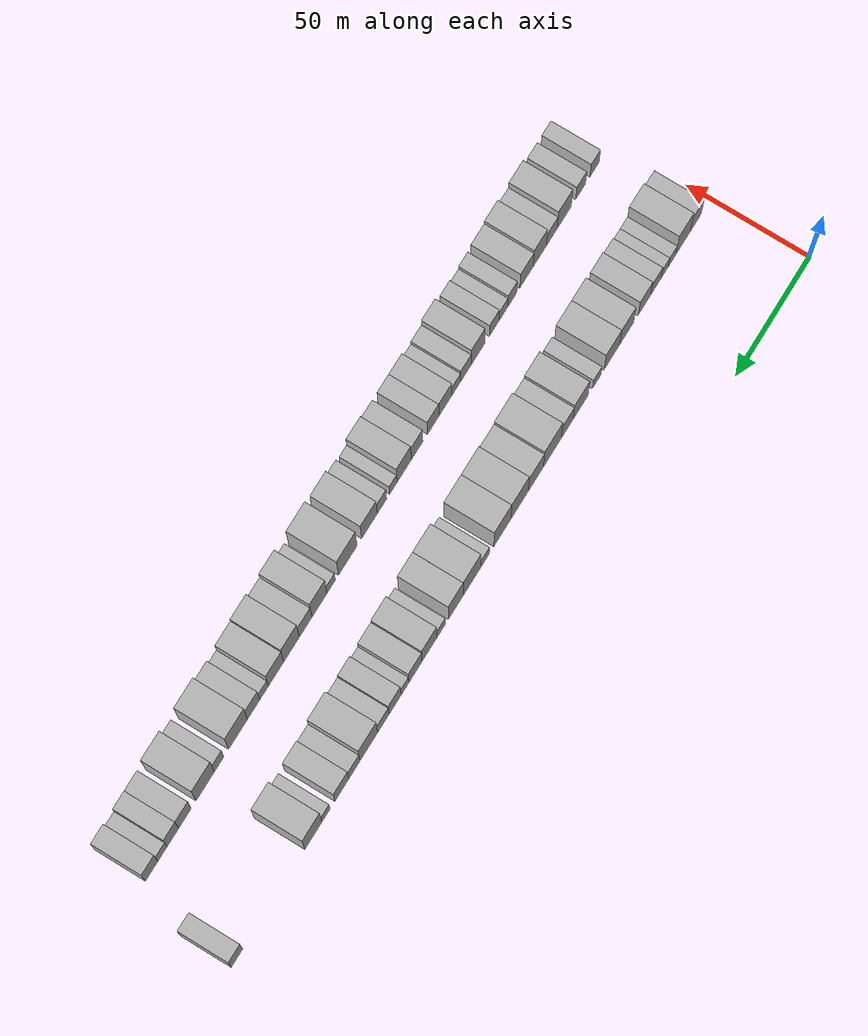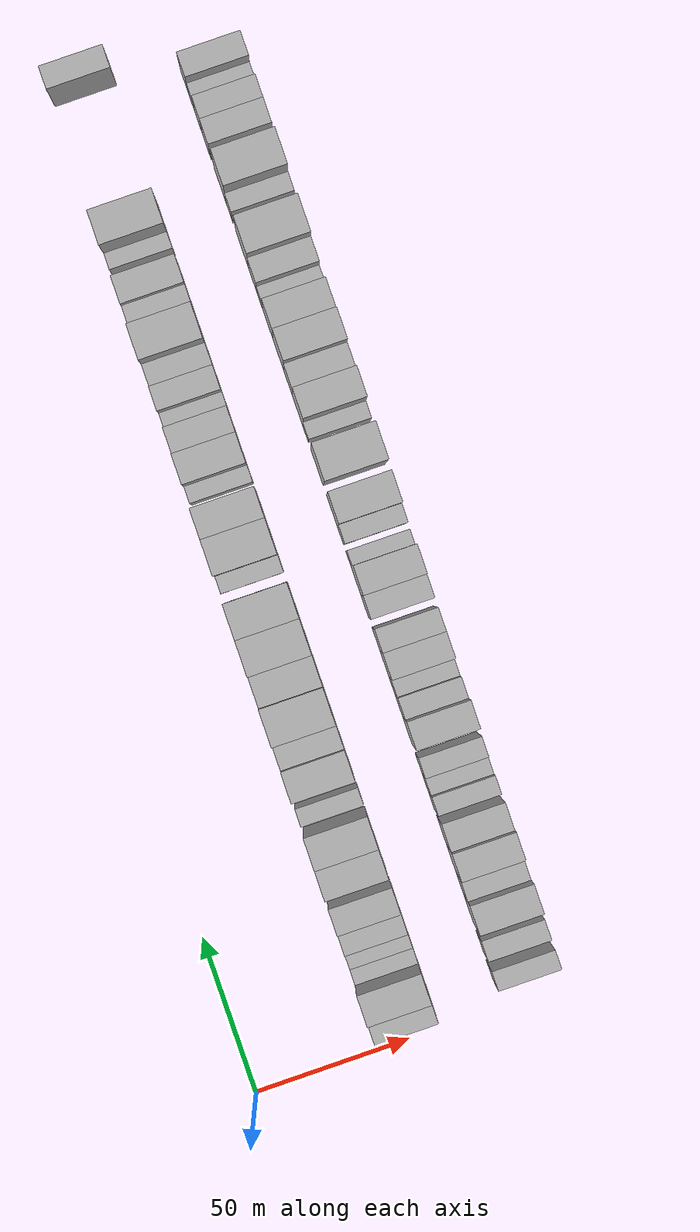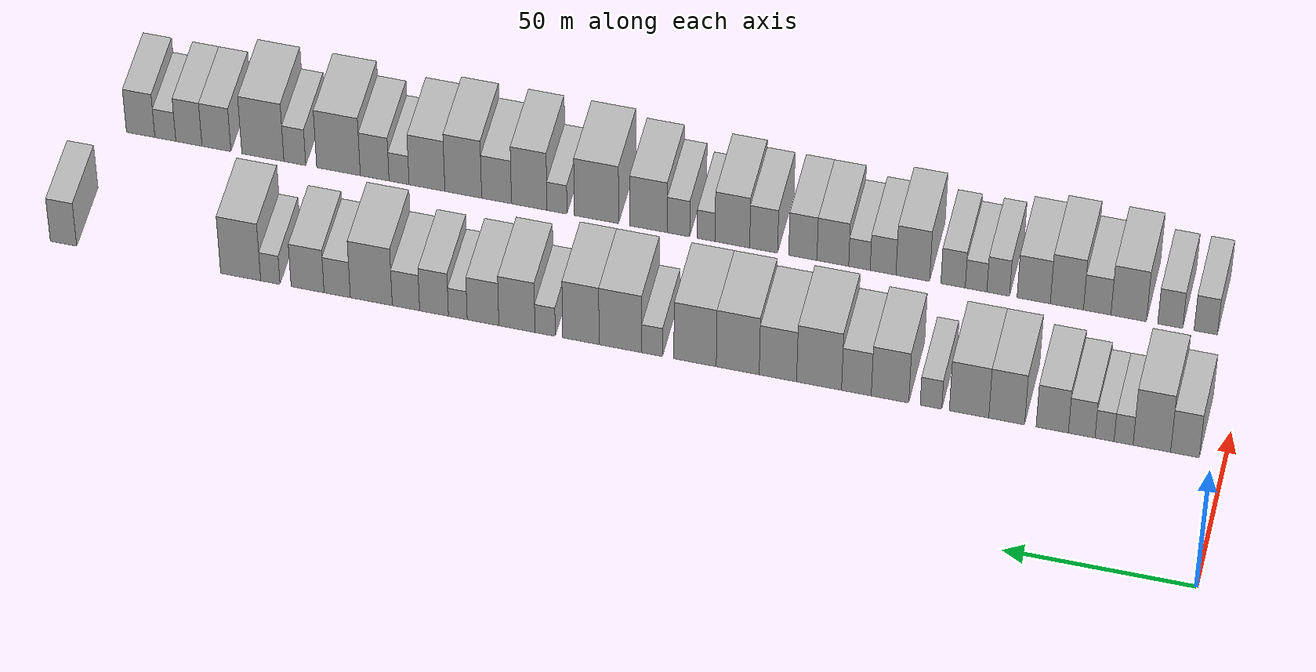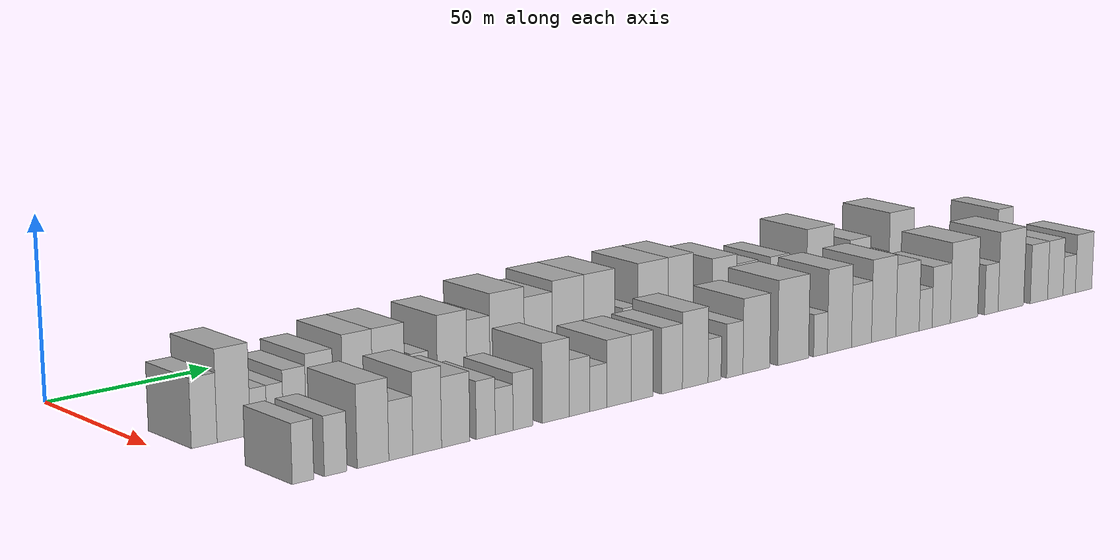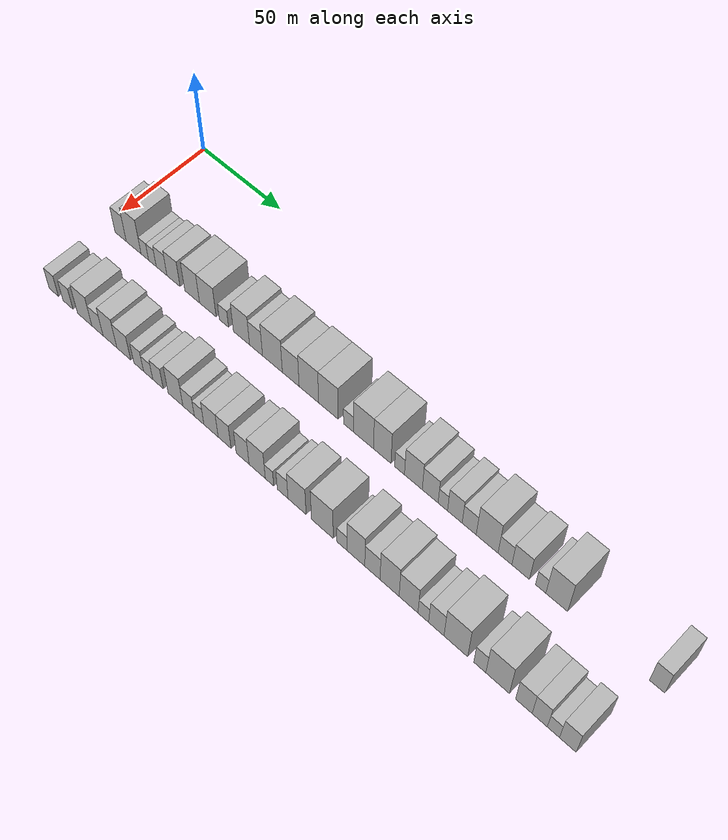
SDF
<sdf version="1.6">
 <world name="default">
  <model name="building_37">
   <static>1</static>
   <pose>50.0000 10.3799 0 0.000000 0.000000 0.000000</pose>
   <link name="link">
    <pose>0 0 9.00 0 0 0</pose>
    <collision name="collision"><geometry><box><size>20.0000 7.4938 18.0000</size></box></geometry></collision>
    <visual name="visual">
     <cast_shadows>0</cast_shadows>
     <geometry><box><size>20.0000 7.4938 18.0000</size></box></geometry>
     <material>
      <script>
       <uri>model://HANNAS_wall/materials/scripts</uri>
       <uri>model://HANNAS_wall/materials/textures</uri>
       <name>vrc/HANNAS_wall</name>
      </script>
     </material>
    </visual>
   </link>
  </model>
  <model name="building_38">
   <static>1</static>
   <pose>50.0000 19.0260 0 0.000000 0.000000 0.000000</pose>
   <link name="link">
    <pose>0 0 12.00 0 0 0</pose>
    <collision name="collision"><geometry><box><size>20.0000 9.7985 24.0000</size></box></geometry></collision>
    <visual name="visual">
     <cast_shadows>0</cast_shadows>
     <geometry><box><size>20.0000 9.7985 24.0000</size></box></geometry>
     <material>
      <script>
       <uri>model://HANNAS_wall/materials/scripts</uri>
       <uri>model://HANNAS_wall/materials/textures</uri>
       <name>vrc/HANNAS_wall</name>
      </script>
     </material>
    </visual>
   </link>
  </model>
  <model name="building_39">
   <static>1</static>
   <pose>50.0000 26.4072 0 0.000000 0.000000 0.000000</pose>
   <link name="link">
    <pose>0 0 6.00 0 0 0</pose>
    <collision name="collision"><geometry><box><size>20.0000 4.9640 12.0000</size></box></geometry></collision>
    <visual name="visual">
     <cast_shadows>0</cast_shadows>
     <geometry><box><size>20.0000 4.9640 12.0000</size></box></geometry>
     <material>
      <script>
       <uri>model://HANNAS_wall/materials/scripts</uri>
       <uri>model://HANNAS_wall/materials/textures</uri>
       <name>vrc/HANNAS_wall</name>
      </script>
     </material>
    </visual>
   </link>
  </model>
  <model name="building_40">
   <static>1</static>
   <pose>50.0000 31.3731 0 0.000000 0.000000 0.000000</pose>
   <link name="link">
    <pose>0 0 6.00 0 0 0</pose>
    <collision name="collision"><geometry><box><size>20.0000 4.9677 12.0000</size></box></geometry></collision>
    <visual name="visual">
     <cast_shadows>0</cast_shadows>
     <geometry><box><size>20.0000 4.9677 12.0000</size></box></geometry>
     <material>
      <script>
       <uri>model://HANNAS_wall/materials/scripts</uri>
       <uri>model://HANNAS_wall/materials/textures</uri>
       <name>vrc/HANNAS_wall</name>
      </script>
     </material>
    </visual>
   </link>
  </model>
  <model name="building_41">
   <static>1</static>
   <pose>50.0000 37.3386 0 0.000000 0.000000 0.000000</pose>
   <link name="link">
    <pose>0 0 7.50 0 0 0</pose>
    <collision name="collision"><geometry><box><size>20.0000 6.9632 15.0000</size></box></geometry></collision>
    <visual name="visual">
     <cast_shadows>0</cast_shadows>
     <geometry><box><size>20.0000 6.9632 15.0000</size></box></geometry>
     <material>
      <script>
       <uri>model://HANNAS_wall/materials/scripts</uri>
       <uri>model://HANNAS_wall/materials/textures</uri>
       <name>vrc/HANNAS_wall</name>
      </script>
     </material>
    </visual>
   </link>
  </model>
  <model name="building_42">
   <static>1</static>
   <pose>50.0000 45.0478 0 0.000000 0.000000 0.000000</pose>
   <link name="link">
    <pose>0 0 9.00 0 0 0</pose>
    <collision name="collision"><geometry><box><size>20.0000 8.4552 18.0000</size></box></geometry></collision>
    <visual name="visual">
     <cast_shadows>0</cast_shadows>
     <geometry><box><size>20.0000 8.4552 18.0000</size></box></geometry>
     <material>
      <script>
       <uri>model://HANNAS_wall/materials/scripts</uri>
       <uri>model://HANNAS_wall/materials/textures</uri>
       <name>vrc/HANNAS_wall</name>
      </script>
     </material>
    </visual>
   </link>
  </model>
  <model name="building_43">
   <static>1</static>
   <pose>50.0000 56.9796 0 0.000000 0.000000 0.000000</pose>
   <link name="link">
    <pose>0 0 10.50 0 0 0</pose>
    <collision name="collision"><geometry><box><size>20.0000 9.4084 21.0000</size></box></geometry></collision>
    <visual name="visual">
     <cast_shadows>0</cast_shadows>
     <geometry><box><size>20.0000 9.4084 21.0000</size></box></geometry>
     <material>
      <script>
       <uri>model://HANNAS_wall/materials/scripts</uri>
       <uri>model://HANNAS_wall/materials/textures</uri>
       <name>vrc/HANNAS_wall</name>
      </script>
     </material>
    </visual>
   </link>
  </model>
  <model name="building_44">
   <static>1</static>
   <pose>50.0000 66.8677 0 0.000000 0.000000 0.000000</pose>
   <link name="link">
    <pose>0 0 10.50 0 0 0</pose>
    <collision name="collision"><geometry><box><size>20.0000 10.3678 21.0000</size></box></geometry></collision>
    <visual name="visual">
     <cast_shadows>0</cast_shadows>
     <geometry><box><size>20.0000 10.3678 21.0000</size></box></geometry>
     <material>
      <script>
       <uri>model://HANNAS_wall/materials/scripts</uri>
       <uri>model://HANNAS_wall/materials/textures</uri>
       <name>vrc/HANNAS_wall</name>
      </script>
     </material>
    </visual>
   </link>
  </model>
  <model name="building_45">
   <static>1</static>
   <pose>50.0000 76.8989 0 0.000000 0.000000 0.000000</pose>
   <link name="link">
    <pose>0 0 6.00 0 0 0</pose>
    <collision name="collision"><geometry><box><size>20.0000 5.6946 12.0000</size></box></geometry></collision>
    <visual name="visual">
     <cast_shadows>0</cast_shadows>
     <geometry><box><size>20.0000 5.6946 12.0000</size></box></geometry>
     <material>
      <script>
       <uri>model://HANNAS_wall/materials/scripts</uri>
       <uri>model://HANNAS_wall/materials/textures</uri>
       <name>vrc/HANNAS_wall</name>
      </script>
     </material>
    </visual>
   </link>
  </model>
  <model name="building_46">
   <static>1</static>
   <pose>50.0000 87.6956 0 0.000000 0.000000 0.000000</pose>
   <link name="link">
    <pose>0 0 10.50 0 0 0</pose>
    <collision name="collision"><geometry><box><size>20.0000 9.8988 21.0000</size></box></geometry></collision>
    <visual name="visual">
     <cast_shadows>0</cast_shadows>
     <geometry><box><size>20.0000 9.8988 21.0000</size></box></geometry>
     <material>
      <script>
       <uri>model://HANNAS_wall/materials/scripts</uri>
       <uri>model://HANNAS_wall/materials/textures</uri>
       <name>vrc/HANNAS_wall</name>
      </script>
     </material>
    </visual>
   </link>
  </model>
  <model name="building_47">
   <static>1</static>
   <pose>50.0000 96.5750 0 0.000000 0.000000 0.000000</pose>
   <link name="link">
    <pose>0 0 9.00 0 0 0</pose>
    <collision name="collision"><geometry><box><size>20.0000 7.8600 18.0000</size></box></geometry></collision>
    <visual name="visual">
     <cast_shadows>0</cast_shadows>
     <geometry><box><size>20.0000 7.8600 18.0000</size></box></geometry>
     <material>
      <script>
       <uri>model://HANNAS_wall/materials/scripts</uri>
       <uri>model://HANNAS_wall/materials/textures</uri>
       <name>vrc/HANNAS_wall</name>
      </script>
     </material>
    </visual>
   </link>
  </model>
  <model name="building_48">
   <static>1</static>
   <pose>50.0000 106.4544 0 0.000000 0.000000 0.000000</pose>
   <link name="link">
    <pose>0 0 12.00 0 0 0</pose>
    <collision name="collision"><geometry><box><size>20.0000 11.8987 24.0000</size></box></geometry></collision>
    <visual name="visual">
     <cast_shadows>0</cast_shadows>
     <geometry><box><size>20.0000 11.8987 24.0000</size></box></geometry>
     <material>
      <script>
       <uri>model://HANNAS_wall/materials/scripts</uri>
       <uri>model://HANNAS_wall/materials/textures</uri>
       <name>vrc/HANNAS_wall</name>
      </script>
     </material>
    </visual>
   </link>
  </model>
  <model name="building_49">
   <static>1</static>
   <pose>50.0000 117.3577 0 0.000000 0.000000 0.000000</pose>
   <link name="link">
    <pose>0 0 10.50 0 0 0</pose>
    <collision name="collision"><geometry><box><size>20.0000 9.9080 21.0000</size></box></geometry></collision>
    <visual name="visual">
     <cast_shadows>0</cast_shadows>
     <geometry><box><size>20.0000 9.9080 21.0000</size></box></geometry>
     <material>
      <script>
       <uri>model://HANNAS_wall/materials/scripts</uri>
       <uri>model://HANNAS_wall/materials/textures</uri>
       <name>vrc/HANNAS_wall</name>
      </script>
     </material>
    </visual>
   </link>
  </model>
  <model name="building_50">
   <static>1</static>
   <pose>50.0000 128.0077 0 0.000000 0.000000 0.000000</pose>
   <link name="link">
    <pose>0 0 12.00 0 0 0</pose>
    <collision name="collision"><geometry><box><size>20.0000 11.3920 24.0000</size></box></geometry></collision>
    <visual name="visual">
     <cast_shadows>0</cast_shadows>
     <geometry><box><size>20.0000 11.3920 24.0000</size></box></geometry>
     <material>
      <script>
       <uri>model://HANNAS_wall/materials/scripts</uri>
       <uri>model://HANNAS_wall/materials/textures</uri>
       <name>vrc/HANNAS_wall</name>
      </script>
     </material>
    </visual>
   </link>
  </model>
  <model name="building_51">
   <static>1</static>
   <pose>50.0000 139.3431 0 0.000000 0.000000 0.000000</pose>
   <link name="link">
    <pose>0 0 12.00 0 0 0</pose>
    <collision name="collision"><geometry><box><size>20.0000 11.2789 24.0000</size></box></geometry></collision>
    <visual name="visual">
     <cast_shadows>0</cast_shadows>
     <geometry><box><size>20.0000 11.2789 24.0000</size></box></geometry>
     <material>
      <script>
       <uri>model://HANNAS_wall/materials/scripts</uri>
       <uri>model://HANNAS_wall/materials/textures</uri>
       <name>vrc/HANNAS_wall</name>
      </script>
     </material>
    </visual>
   </link>
  </model>
  <model name="building_52">
   <static>1</static>
   <pose>50.0000 150.7632 0 0.000000 0.000000 0.000000</pose>
   <link name="link">
    <pose>0 0 6.00 0 0 0</pose>
    <collision name="collision"><geometry><box><size>20.0000 5.5613 12.0000</size></box></geometry></collision>
    <visual name="visual">
     <cast_shadows>0</cast_shadows>
     <geometry><box><size>20.0000 5.5613 12.0000</size></box></geometry>
     <material>
      <script>
       <uri>model://HANNAS_wall/materials/scripts</uri>
       <uri>model://HANNAS_wall/materials/textures</uri>
       <name>vrc/HANNAS_wall</name>
      </script>
     </material>
    </visual>
   </link>
  </model>
  <model name="building_53">
   <static>1</static>
   <pose>50.0000 159.2375 0 0.000000 0.000000 0.000000</pose>
   <link name="link">
    <pose>0 0 12.00 0 0 0</pose>
    <collision name="collision"><geometry><box><size>20.0000 11.3873 24.0000</size></box></geometry></collision>
    <visual name="visual">
     <cast_shadows>0</cast_shadows>
     <geometry><box><size>20.0000 11.3873 24.0000</size></box></geometry>
     <material>
      <script>
       <uri>model://HANNAS_wall/materials/scripts</uri>
       <uri>model://HANNAS_wall/materials/textures</uri>
       <name>vrc/HANNAS_wall</name>
      </script>
     </material>
    </visual>
   </link>
  </model>
  <model name="building_54">
   <static>1</static>
   <pose>50.0000 169.7897 0 0.000000 0.000000 0.000000</pose>
   <link name="link">
    <pose>0 0 12.00 0 0 0</pose>
    <collision name="collision"><geometry><box><size>20.0000 9.7170 24.0000</size></box></geometry></collision>
    <visual name="visual">
     <cast_shadows>0</cast_shadows>
     <geometry><box><size>20.0000 9.7170 24.0000</size></box></geometry>
     <material>
      <script>
       <uri>model://HANNAS_wall/materials/scripts</uri>
       <uri>model://HANNAS_wall/materials/textures</uri>
       <name>vrc/HANNAS_wall</name>
      </script>
     </material>
    </visual>
   </link>
  </model>
  <model name="building_55">
   <static>1</static>
   <pose>50.0000 179.3563 0 0.000000 0.000000 0.000000</pose>
   <link name="link">
    <pose>0 0 6.00 0 0 0</pose>
    <collision name="collision"><geometry><box><size>20.0000 5.4163 12.0000</size></box></geometry></collision>
    <visual name="visual">
     <cast_shadows>0</cast_shadows>
     <geometry><box><size>20.0000 5.4163 12.0000</size></box></geometry>
     <material>
      <script>
       <uri>model://HANNAS_wall/materials/scripts</uri>
       <uri>model://HANNAS_wall/materials/textures</uri>
       <name>vrc/HANNAS_wall</name>
      </script>
     </material>
    </visual>
   </link>
  </model>
  <model name="building_56">
   <static>1</static>
   <pose>50.0000 186.9080 0 0.000000 0.000000 0.000000</pose>
   <link name="link">
    <pose>0 0 10.50 0 0 0</pose>
    <collision name="collision"><geometry><box><size>20.0000 9.6870 21.0000</size></box></geometry></collision>
    <visual name="visual">
     <cast_shadows>0</cast_shadows>
     <geometry><box><size>20.0000 9.6870 21.0000</size></box></geometry>
     <material>
      <script>
       <uri>model://HANNAS_wall/materials/scripts</uri>
       <uri>model://HANNAS_wall/materials/textures</uri>
       <name>vrc/HANNAS_wall</name>
      </script>
     </material>
    </visual>
   </link>
  </model>
  <model name="building_57">
   <static>1</static>
   <pose>50.0000 196.0054 0 0.000000 0.000000 0.000000</pose>
   <link name="link">
    <pose>0 0 9.00 0 0 0</pose>
    <collision name="collision"><geometry><box><size>20.0000 8.5078 18.0000</size></box></geometry></collision>
    <visual name="visual">
     <cast_shadows>0</cast_shadows>
     <geometry><box><size>20.0000 8.5078 18.0000</size></box></geometry>
     <material>
      <script>
       <uri>model://HANNAS_wall/materials/scripts</uri>
       <uri>model://HANNAS_wall/materials/textures</uri>
       <name>vrc/HANNAS_wall</name>
      </script>
     </material>
    </visual>
   </link>
  </model>
  <model name="building_58">
   <static>1</static>
   <pose>50.0000 202.7801 0 0.000000 0.000000 0.000000</pose>
   <link name="link">
    <pose>0 0 6.00 0 0 0</pose>
    <collision name="collision"><geometry><box><size>20.0000 5.0415 12.0000</size></box></geometry></collision>
    <visual name="visual">
     <cast_shadows>0</cast_shadows>
     <geometry><box><size>20.0000 5.0415 12.0000</size></box></geometry>
     <material>
      <script>
       <uri>model://HANNAS_wall/materials/scripts</uri>
       <uri>model://HANNAS_wall/materials/textures</uri>
       <name>vrc/HANNAS_wall</name>
      </script>
     </material>
    </visual>
   </link>
  </model>
  <model name="building_59">
   <static>1</static>
   <pose>50.0000 209.1757 0 0.000000 0.000000 0.000000</pose>
   <link name="link">
    <pose>0 0 9.00 0 0 0</pose>
    <collision name="collision"><geometry><box><size>20.0000 7.7497 18.0000</size></box></geometry></collision>
    <visual name="visual">
     <cast_shadows>0</cast_shadows>
     <geometry><box><size>20.0000 7.7497 18.0000</size></box></geometry>
     <material>
      <script>
       <uri>model://HANNAS_wall/materials/scripts</uri>
       <uri>model://HANNAS_wall/materials/textures</uri>
       <name>vrc/HANNAS_wall</name>
      </script>
     </material>
    </visual>
   </link>
  </model>
  <model name="building_60">
   <static>1</static>
   <pose>50.0000 216.7390 0 0.000000 0.000000 0.000000</pose>
   <link name="link">
    <pose>0 0 7.50 0 0 0</pose>
    <collision name="collision"><geometry><box><size>20.0000 7.3770 15.0000</size></box></geometry></collision>
    <visual name="visual">
     <cast_shadows>0</cast_shadows>
     <geometry><box><size>20.0000 7.3770 15.0000</size></box></geometry>
     <material>
      <script>
       <uri>model://HANNAS_wall/materials/scripts</uri>
       <uri>model://HANNAS_wall/materials/textures</uri>
       <name>vrc/HANNAS_wall</name>
      </script>
     </material>
    </visual>
   </link>
  </model>
  <model name="building_61">
   <static>1</static>
   <pose>50.0000 226.0834 0 0.000000 0.000000 0.000000</pose>
   <link name="link">
    <pose>0 0 12.00 0 0 0</pose>
    <collision name="collision"><geometry><box><size>20.0000 11.3120 24.0000</size></box></geometry></collision>
    <visual name="visual">
     <cast_shadows>0</cast_shadows>
     <geometry><box><size>20.0000 11.3120 24.0000</size></box></geometry>
     <material>
      <script>
       <uri>model://HANNAS_wall/materials/scripts</uri>
       <uri>model://HANNAS_wall/materials/textures</uri>
       <name>vrc/HANNAS_wall</name>
      </script>
     </material>
    </visual>
   </link>
  </model>
  <model name="building_62">
   <static>1</static>
   <pose>50.0000 235.2895 0 0.000000 0.000000 0.000000</pose>
   <link name="link">
    <pose>0 0 7.50 0 0 0</pose>
    <collision name="collision"><geometry><box><size>20.0000 7.1001 15.0000</size></box></geometry></collision>
    <visual name="visual">
     <cast_shadows>0</cast_shadows>
     <geometry><box><size>20.0000 7.1001 15.0000</size></box></geometry>
     <material>
      <script>
       <uri>model://HANNAS_wall/materials/scripts</uri>
       <uri>model://HANNAS_wall/materials/textures</uri>
       <name>vrc/HANNAS_wall</name>
      </script>
     </material>
    </visual>
   </link>
  </model>
  <model name="building_63">
   <static>1</static>
   <pose>50.0000 243.3036 0 0.000000 0.000000 0.000000</pose>
   <link name="link">
    <pose>0 0 9.00 0 0 0</pose>
    <collision name="collision"><geometry><box><size>20.0000 8.9282 18.0000</size></box></geometry></collision>
    <visual name="visual">
     <cast_shadows>0</cast_shadows>
     <geometry><box><size>20.0000 8.9282 18.0000</size></box></geometry>
     <material>
      <script>
       <uri>model://HANNAS_wall/materials/scripts</uri>
       <uri>model://HANNAS_wall/materials/textures</uri>
       <name>vrc/HANNAS_wall</name>
      </script>
     </material>
    </visual>
   </link>
  </model>
  <model name="building_64">
   <static>1</static>
   <pose>50.0000 253.3805 0 0.000000 0.000000 0.000000</pose>
   <link name="link">
    <pose>0 0 6.00 0 0 0</pose>
    <collision name="collision"><geometry><box><size>20.0000 5.2256 12.0000</size></box></geometry></collision>
    <visual name="visual">
     <cast_shadows>0</cast_shadows>
     <geometry><box><size>20.0000 5.2256 12.0000</size></box></geometry>
     <material>
      <script>
       <uri>model://HANNAS_wall/materials/scripts</uri>
       <uri>model://HANNAS_wall/materials/textures</uri>
       <name>vrc/HANNAS_wall</name>
      </script>
     </material>
    </visual>
   </link>
  </model>
  <model name="building_65">
   <static>1</static>
   <pose>50.0000 261.4214 0 0.000000 0.000000 0.000000</pose>
   <link name="link">
    <pose>0 0 12.00 0 0 0</pose>
    <collision name="collision"><geometry><box><size>20.0000 10.8561 24.0000</size></box></geometry></collision>
    <visual name="visual">
     <cast_shadows>0</cast_shadows>
     <geometry><box><size>20.0000 10.8561 24.0000</size></box></geometry>
     <material>
      <script>
       <uri>model://HANNAS_wall/materials/scripts</uri>
       <uri>model://HANNAS_wall/materials/textures</uri>
       <name>vrc/HANNAS_wall</name>
      </script>
     </material>
    </visual>
   </link>
  </model>
  <model name="building_66">
   <static>1</static>
   <pose>50.0000 309.6794 0 0.000000 0.000000 0.000000</pose>
   <link name="link">
    <pose>0 0 9.00 0 0 0</pose>
    <collision name="collision"><geometry><box><size>20.0000 7.2200 18.0000</size></box></geometry></collision>
    <visual name="visual">
     <cast_shadows>0</cast_shadows>
     <geometry><box><size>20.0000 7.2200 18.0000</size></box></geometry>
     <material>
      <script>
       <uri>model://HANNAS_wall/materials/scripts</uri>
       <uri>model://HANNAS_wall/materials/textures</uri>
       <name>vrc/HANNAS_wall</name>
      </script>
     </material>
    </visual>
   </link>
  </model>
  <model name="building_95">
   <static>1</static>
   <pose>90.0000 12.2128 0 0.000000 0.000000 0.000000</pose>
   <link name="link">
    <pose>0 0 7.50 0 0 0</pose>
    <collision name="collision"><geometry><box><size>20.0000 6.1714 15.0000</size></box></geometry></collision>
    <visual name="visual">
     <cast_shadows>0</cast_shadows>
     <geometry><box><size>20.0000 6.1714 15.0000</size></box></geometry>
     <material>
      <script>
       <uri>model://HANNAS_wall/materials/scripts</uri>
       <uri>model://HANNAS_wall/materials/textures</uri>
       <name>vrc/HANNAS_wall</name>
      </script>
     </material>
    </visual>
   </link>
  </model>
  <model name="building_96">
   <static>1</static>
   <pose>90.0000 21.6024 0 0.000000 0.000000 0.000000</pose>
   <link name="link">
    <pose>0 0 7.50 0 0 0</pose>
    <collision name="collision"><geometry><box><size>20.0000 6.6077 15.0000</size></box></geometry></collision>
    <visual name="visual">
     <cast_shadows>0</cast_shadows>
     <geometry><box><size>20.0000 6.6077 15.0000</size></box></geometry>
     <material>
      <script>
       <uri>model://HANNAS_wall/materials/scripts</uri>
       <uri>model://HANNAS_wall/materials/textures</uri>
       <name>vrc/HANNAS_wall</name>
      </script>
     </material>
    </visual>
   </link>
  </model>
  <model name="building_97">
   <static>1</static>
   <pose>90.0000 32.6083 0 0.000000 0.000000 0.000000</pose>
   <link name="link">
    <pose>0 0 10.50 0 0 0</pose>
    <collision name="collision"><geometry><box><size>20.0000 9.4041 21.0000</size></box></geometry></collision>
    <visual name="visual">
     <cast_shadows>0</cast_shadows>
     <geometry><box><size>20.0000 9.4041 21.0000</size></box></geometry>
     <material>
      <script>
       <uri>model://HANNAS_wall/materials/scripts</uri>
       <uri>model://HANNAS_wall/materials/textures</uri>
       <name>vrc/HANNAS_wall</name>
      </script>
     </material>
    </visual>
   </link>
  </model>
  <model name="building_98">
   <static>1</static>
   <pose>90.0000 40.9501 0 0.000000 0.000000 0.000000</pose>
   <link name="link">
    <pose>0 0 7.50 0 0 0</pose>
    <collision name="collision"><geometry><box><size>20.0000 7.2795 15.0000</size></box></geometry></collision>
    <visual name="visual">
     <cast_shadows>0</cast_shadows>
     <geometry><box><size>20.0000 7.2795 15.0000</size></box></geometry>
     <material>
      <script>
       <uri>model://HANNAS_wall/materials/scripts</uri>
       <uri>model://HANNAS_wall/materials/textures</uri>
       <name>vrc/HANNAS_wall</name>
      </script>
     </material>
    </visual>
   </link>
  </model>
  <model name="building_99">
   <static>1</static>
   <pose>90.0000 48.9979 0 0.000000 0.000000 0.000000</pose>
   <link name="link">
    <pose>0 0 10.50 0 0 0</pose>
    <collision name="collision"><geometry><box><size>20.0000 8.8161 21.0000</size></box></geometry></collision>
    <visual name="visual">
     <cast_shadows>0</cast_shadows>
     <geometry><box><size>20.0000 8.8161 21.0000</size></box></geometry>
     <material>
      <script>
       <uri>model://HANNAS_wall/materials/scripts</uri>
       <uri>model://HANNAS_wall/materials/textures</uri>
       <name>vrc/HANNAS_wall</name>
      </script>
     </material>
    </visual>
   </link>
  </model>
  <model name="building_100">
   <static>1</static>
   <pose>90.0000 57.8221 0 0.000000 0.000000 0.000000</pose>
   <link name="link">
    <pose>0 0 9.00 0 0 0</pose>
    <collision name="collision"><geometry><box><size>20.0000 8.8323 18.0000</size></box></geometry></collision>
    <visual name="visual">
     <cast_shadows>0</cast_shadows>
     <geometry><box><size>20.0000 8.8323 18.0000</size></box></geometry>
     <material>
      <script>
       <uri>model://HANNAS_wall/materials/scripts</uri>
       <uri>model://HANNAS_wall/materials/textures</uri>
       <name>vrc/HANNAS_wall</name>
      </script>
     </material>
    </visual>
   </link>
  </model>
  <model name="building_101">
   <static>1</static>
   <pose>90.0000 67.2646 0 0.000000 0.000000 0.000000</pose>
   <link name="link">
    <pose>0 0 7.50 0 0 0</pose>
    <collision name="collision"><geometry><box><size>20.0000 6.0527 15.0000</size></box></geometry></collision>
    <visual name="visual">
     <cast_shadows>0</cast_shadows>
     <geometry><box><size>20.0000 6.0527 15.0000</size></box></geometry>
     <material>
      <script>
       <uri>model://HANNAS_wall/materials/scripts</uri>
       <uri>model://HANNAS_wall/materials/textures</uri>
       <name>vrc/HANNAS_wall</name>
      </script>
     </material>
    </visual>
   </link>
  </model>
  <model name="building_102">
   <static>1</static>
   <pose>90.0000 73.1702 0 0.000000 0.000000 0.000000</pose>
   <link name="link">
    <pose>0 0 6.00 0 0 0</pose>
    <collision name="collision"><geometry><box><size>20.0000 5.7584 12.0000</size></box></geometry></collision>
    <visual name="visual">
     <cast_shadows>0</cast_shadows>
     <geometry><box><size>20.0000 5.7584 12.0000</size></box></geometry>
     <material>
      <script>
       <uri>model://HANNAS_wall/materials/scripts</uri>
       <uri>model://HANNAS_wall/materials/textures</uri>
       <name>vrc/HANNAS_wall</name>
      </script>
     </material>
    </visual>
   </link>
  </model>
  <model name="building_103">
   <static>1</static>
   <pose>90.0000 79.3031 0 0.000000 0.000000 0.000000</pose>
   <link name="link">
    <pose>0 0 7.50 0 0 0</pose>
    <collision name="collision"><geometry><box><size>20.0000 6.5074 15.0000</size></box></geometry></collision>
    <visual name="visual">
     <cast_shadows>0</cast_shadows>
     <geometry><box><size>20.0000 6.5074 15.0000</size></box></geometry>
     <material>
      <script>
       <uri>model://HANNAS_wall/materials/scripts</uri>
       <uri>model://HANNAS_wall/materials/textures</uri>
       <name>vrc/HANNAS_wall</name>
      </script>
     </material>
    </visual>
   </link>
  </model>
  <model name="building_104">
   <static>1</static>
   <pose>90.0000 90.0618 0 0.000000 0.000000 0.000000</pose>
   <link name="link">
    <pose>0 0 10.50 0 0 0</pose>
    <collision name="collision"><geometry><box><size>20.0000 9.0100 21.0000</size></box></geometry></collision>
    <visual name="visual">
     <cast_shadows>0</cast_shadows>
     <geometry><box><size>20.0000 9.0100 21.0000</size></box></geometry>
     <material>
      <script>
       <uri>model://HANNAS_wall/materials/scripts</uri>
       <uri>model://HANNAS_wall/materials/textures</uri>
       <name>vrc/HANNAS_wall</name>
      </script>
     </material>
    </visual>
   </link>
  </model>
  <model name="building_105">
   <static>1</static>
   <pose>90.0000 98.0217 0 0.000000 0.000000 0.000000</pose>
   <link name="link">
    <pose>0 0 7.50 0 0 0</pose>
    <collision name="collision"><geometry><box><size>20.0000 6.9097 15.0000</size></box></geometry></collision>
    <visual name="visual">
     <cast_shadows>0</cast_shadows>
     <geometry><box><size>20.0000 6.9097 15.0000</size></box></geometry>
     <material>
      <script>
       <uri>model://HANNAS_wall/materials/scripts</uri>
       <uri>model://HANNAS_wall/materials/textures</uri>
       <name>vrc/HANNAS_wall</name>
      </script>
     </material>
    </visual>
   </link>
  </model>
  <model name="building_106">
   <static>1</static>
   <pose>90.0000 104.3587 0 0.000000 0.000000 0.000000</pose>
   <link name="link">
    <pose>0 0 6.00 0 0 0</pose>
    <collision name="collision"><geometry><box><size>20.0000 5.7642 12.0000</size></box></geometry></collision>
    <visual name="visual">
     <cast_shadows>0</cast_shadows>
     <geometry><box><size>20.0000 5.7642 12.0000</size></box></geometry>
     <material>
      <script>
       <uri>model://HANNAS_wall/materials/scripts</uri>
       <uri>model://HANNAS_wall/materials/textures</uri>
       <name>vrc/HANNAS_wall</name>
      </script>
     </material>
    </visual>
   </link>
  </model>
  <model name="building_107">
   <static>1</static>
   <pose>90.0000 111.5012 0 0.000000 0.000000 0.000000</pose>
   <link name="link">
    <pose>0 0 9.00 0 0 0</pose>
    <collision name="collision"><geometry><box><size>20.0000 8.5210 18.0000</size></box></geometry></collision>
    <visual name="visual">
     <cast_shadows>0</cast_shadows>
     <geometry><box><size>20.0000 8.5210 18.0000</size></box></geometry>
     <material>
      <script>
       <uri>model://HANNAS_wall/materials/scripts</uri>
       <uri>model://HANNAS_wall/materials/textures</uri>
       <name>vrc/HANNAS_wall</name>
      </script>
     </material>
    </visual>
   </link>
  </model>
  <model name="building_108">
   <static>1</static>
   <pose>90.0000 119.5461 0 0.000000 0.000000 0.000000</pose>
   <link name="link">
    <pose>0 0 9.00 0 0 0</pose>
    <collision name="collision"><geometry><box><size>20.0000 7.5687 18.0000</size></box></geometry></collision>
    <visual name="visual">
     <cast_shadows>0</cast_shadows>
     <geometry><box><size>20.0000 7.5687 18.0000</size></box></geometry>
     <material>
      <script>
       <uri>model://HANNAS_wall/materials/scripts</uri>
       <uri>model://HANNAS_wall/materials/textures</uri>
       <name>vrc/HANNAS_wall</name>
      </script>
     </material>
    </visual>
   </link>
  </model>
  <model name="building_109">
   <static>1</static>
   <pose>90.0000 130.0877 0 0.000000 0.000000 0.000000</pose>
   <link name="link">
    <pose>0 0 9.00 0 0 0</pose>
    <collision name="collision"><geometry><box><size>20.0000 7.5146 18.0000</size></box></geometry></collision>
    <visual name="visual">
     <cast_shadows>0</cast_shadows>
     <geometry><box><size>20.0000 7.5146 18.0000</size></box></geometry>
     <material>
      <script>
       <uri>model://HANNAS_wall/materials/scripts</uri>
       <uri>model://HANNAS_wall/materials/textures</uri>
       <name>vrc/HANNAS_wall</name>
      </script>
     </material>
    </visual>
   </link>
  </model>
  <model name="building_110">
   <static>1</static>
   <pose>90.0000 138.5202 0 0.000000 0.000000 0.000000</pose>
   <link name="link">
    <pose>0 0 10.50 0 0 0</pose>
    <collision name="collision"><geometry><box><size>20.0000 9.3503 21.0000</size></box></geometry></collision>
    <visual name="visual">
     <cast_shadows>0</cast_shadows>
     <geometry><box><size>20.0000 9.3503 21.0000</size></box></geometry>
     <material>
      <script>
       <uri>model://HANNAS_wall/materials/scripts</uri>
       <uri>model://HANNAS_wall/materials/textures</uri>
       <name>vrc/HANNAS_wall</name>
      </script>
     </material>
    </visual>
   </link>
  </model>
  <model name="building_111">
   <static>1</static>
   <pose>90.0000 145.6035 0 0.000000 0.000000 0.000000</pose>
   <link name="link">
    <pose>0 0 6.00 0 0 0</pose>
    <collision name="collision"><geometry><box><size>20.0000 4.8162 12.0000</size></box></geometry></collision>
    <visual name="visual">
     <cast_shadows>0</cast_shadows>
     <geometry><box><size>20.0000 4.8162 12.0000</size></box></geometry>
     <material>
      <script>
       <uri>model://HANNAS_wall/materials/scripts</uri>
       <uri>model://HANNAS_wall/materials/textures</uri>
       <name>vrc/HANNAS_wall</name>
      </script>
     </material>
    </visual>
   </link>
  </model>
  <model name="building_112">
   <static>1</static>
   <pose>90.0000 153.0578 0 0.000000 0.000000 0.000000</pose>
   <link name="link">
    <pose>0 0 7.50 0 0 0</pose>
    <collision name="collision"><geometry><box><size>20.0000 6.0925 15.0000</size></box></geometry></collision>
    <visual name="visual">
     <cast_shadows>0</cast_shadows>
     <geometry><box><size>20.0000 6.0925 15.0000</size></box></geometry>
     <material>
      <script>
       <uri>model://HANNAS_wall/materials/scripts</uri>
       <uri>model://HANNAS_wall/materials/textures</uri>
       <name>vrc/HANNAS_wall</name>
      </script>
     </material>
    </visual>
   </link>
  </model>
  <model name="building_113">
   <static>1</static>
   <pose>90.0000 161.1700 0 0.000000 0.000000 0.000000</pose>
   <link name="link">
    <pose>0 0 10.50 0 0 0</pose>
    <collision name="collision"><geometry><box><size>20.0000 10.1318 21.0000</size></box></geometry></collision>
    <visual name="visual">
     <cast_shadows>0</cast_shadows>
     <geometry><box><size>20.0000 10.1318 21.0000</size></box></geometry>
     <material>
      <script>
       <uri>model://HANNAS_wall/materials/scripts</uri>
       <uri>model://HANNAS_wall/materials/textures</uri>
       <name>vrc/HANNAS_wall</name>
      </script>
     </material>
    </visual>
   </link>
  </model>
  <model name="building_114">
   <static>1</static>
   <pose>90.0000 175.2314 0 0.000000 0.000000 0.000000</pose>
   <link name="link">
    <pose>0 0 12.00 0 0 0</pose>
    <collision name="collision"><geometry><box><size>20.0000 11.9910 24.0000</size></box></geometry></collision>
    <visual name="visual">
     <cast_shadows>0</cast_shadows>
     <geometry><box><size>20.0000 11.9910 24.0000</size></box></geometry>
     <material>
      <script>
       <uri>model://HANNAS_wall/materials/scripts</uri>
       <uri>model://HANNAS_wall/materials/textures</uri>
       <name>vrc/HANNAS_wall</name>
      </script>
     </material>
    </visual>
   </link>
  </model>
  <model name="building_115">
   <static>1</static>
   <pose>90.0000 185.9324 0 0.000000 0.000000 0.000000</pose>
   <link name="link">
    <pose>0 0 6.00 0 0 0</pose>
    <collision name="collision"><geometry><box><size>20.0000 5.4111 12.0000</size></box></geometry></collision>
    <visual name="visual">
     <cast_shadows>0</cast_shadows>
     <geometry><box><size>20.0000 5.4111 12.0000</size></box></geometry>
     <material>
      <script>
       <uri>model://HANNAS_wall/materials/scripts</uri>
       <uri>model://HANNAS_wall/materials/textures</uri>
       <name>vrc/HANNAS_wall</name>
      </script>
     </material>
    </visual>
   </link>
  </model>
  <model name="building_116">
   <static>1</static>
   <pose>90.0000 193.4672 0 0.000000 0.000000 0.000000</pose>
   <link name="link">
    <pose>0 0 12.00 0 0 0</pose>
    <collision name="collision"><geometry><box><size>20.0000 9.6585 24.0000</size></box></geometry></collision>
    <visual name="visual">
     <cast_shadows>0</cast_shadows>
     <geometry><box><size>20.0000 9.6585 24.0000</size></box></geometry>
     <material>
      <script>
       <uri>model://HANNAS_wall/materials/scripts</uri>
       <uri>model://HANNAS_wall/materials/textures</uri>
       <name>vrc/HANNAS_wall</name>
      </script>
     </material>
    </visual>
   </link>
  </model>
  <model name="building_117">
   <static>1</static>
   <pose>90.0000 202.3564 0 0.000000 0.000000 0.000000</pose>
   <link name="link">
    <pose>0 0 9.00 0 0 0</pose>
    <collision name="collision"><geometry><box><size>20.0000 8.1198 18.0000</size></box></geometry></collision>
    <visual name="visual">
     <cast_shadows>0</cast_shadows>
     <geometry><box><size>20.0000 8.1198 18.0000</size></box></geometry>
     <material>
      <script>
       <uri>model://HANNAS_wall/materials/scripts</uri>
       <uri>model://HANNAS_wall/materials/textures</uri>
       <name>vrc/HANNAS_wall</name>
      </script>
     </material>
    </visual>
   </link>
  </model>
  <model name="building_118">
   <static>1</static>
   <pose>90.0000 211.4306 0 0.000000 0.000000 0.000000</pose>
   <link name="link">
    <pose>0 0 12.00 0 0 0</pose>
    <collision name="collision"><geometry><box><size>20.0000 10.0287 24.0000</size></box></geometry></collision>
    <visual name="visual">
     <cast_shadows>0</cast_shadows>
     <geometry><box><size>20.0000 10.0287 24.0000</size></box></geometry>
     <material>
      <script>
       <uri>model://HANNAS_wall/materials/scripts</uri>
       <uri>model://HANNAS_wall/materials/textures</uri>
       <name>vrc/HANNAS_wall</name>
      </script>
     </material>
    </visual>
   </link>
  </model>
  <model name="building_119">
   <static>1</static>
   <pose>90.0000 221.3431 0 0.000000 0.000000 0.000000</pose>
   <link name="link">
    <pose>0 0 10.50 0 0 0</pose>
    <collision name="collision"><geometry><box><size>20.0000 9.7963 21.0000</size></box></geometry></collision>
    <visual name="visual">
     <cast_shadows>0</cast_shadows>
     <geometry><box><size>20.0000 9.7963 21.0000</size></box></geometry>
     <material>
      <script>
       <uri>model://HANNAS_wall/materials/scripts</uri>
       <uri>model://HANNAS_wall/materials/textures</uri>
       <name>vrc/HANNAS_wall</name>
      </script>
     </material>
    </visual>
   </link>
  </model>
  <model name="building_120">
   <static>1</static>
   <pose>90.0000 228.9754 0 0.000000 0.000000 0.000000</pose>
   <link name="link">
    <pose>0 0 6.00 0 0 0</pose>
    <collision name="collision"><geometry><box><size>20.0000 5.4684 12.0000</size></box></geometry></collision>
    <visual name="visual">
     <cast_shadows>0</cast_shadows>
     <geometry><box><size>20.0000 5.4684 12.0000</size></box></geometry>
     <material>
      <script>
       <uri>model://HANNAS_wall/materials/scripts</uri>
       <uri>model://HANNAS_wall/materials/textures</uri>
       <name>vrc/HANNAS_wall</name>
      </script>
     </material>
    </visual>
   </link>
  </model>
  <model name="building_121">
   <static>1</static>
   <pose>90.0000 235.6446 0 0.000000 0.000000 0.000000</pose>
   <link name="link">
    <pose>0 0 9.00 0 0 0</pose>
    <collision name="collision"><geometry><box><size>20.0000 7.8700 18.0000</size></box></geometry></collision>
    <visual name="visual">
     <cast_shadows>0</cast_shadows>
     <geometry><box><size>20.0000 7.8700 18.0000</size></box></geometry>
     <material>
      <script>
       <uri>model://HANNAS_wall/materials/scripts</uri>
       <uri>model://HANNAS_wall/materials/textures</uri>
       <name>vrc/HANNAS_wall</name>
      </script>
     </material>
    </visual>
   </link>
  </model>
  <model name="building_122">
   <static>1</static>
   <pose>90.0000 245.5578 0 0.000000 0.000000 0.000000</pose>
   <link name="link">
    <pose>0 0 12.00 0 0 0</pose>
    <collision name="collision"><geometry><box><size>20.0000 11.9565 24.0000</size></box></geometry></collision>
    <visual name="visual">
     <cast_shadows>0</cast_shadows>
     <geometry><box><size>20.0000 11.9565 24.0000</size></box></geometry>
     <material>
      <script>
       <uri>model://HANNAS_wall/materials/scripts</uri>
       <uri>model://HANNAS_wall/materials/textures</uri>
       <name>vrc/HANNAS_wall</name>
      </script>
     </material>
    </visual>
   </link>
  </model>
  <model name="building_123">
   <static>1</static>
   <pose>90.0000 257.5370 0 0.000000 0.000000 0.000000</pose>
   <link name="link">
    <pose>0 0 7.50 0 0 0</pose>
    <collision name="collision"><geometry><box><size>20.0000 6.0019 15.0000</size></box></geometry></collision>
    <visual name="visual">
     <cast_shadows>0</cast_shadows>
     <geometry><box><size>20.0000 6.0019 15.0000</size></box></geometry>
     <material>
      <script>
       <uri>model://HANNAS_wall/materials/scripts</uri>
       <uri>model://HANNAS_wall/materials/textures</uri>
       <name>vrc/HANNAS_wall</name>
      </script>
     </material>
    </visual>
   </link>
  </model>
  <model name="building_124">
   <static>1</static>
   <pose>90.0000 266.3272 0 0.000000 0.000000 0.000000</pose>
   <link name="link">
    <pose>0 0 12.00 0 0 0</pose>
    <collision name="collision"><geometry><box><size>20.0000 11.5784 24.0000</size></box></geometry></collision>
    <visual name="visual">
     <cast_shadows>0</cast_shadows>
     <geometry><box><size>20.0000 11.5784 24.0000</size></box></geometry>
     <material>
      <script>
       <uri>model://HANNAS_wall/materials/scripts</uri>
       <uri>model://HANNAS_wall/materials/textures</uri>
       <name>vrc/HANNAS_wall</name>
      </script>
     </material>
    </visual>
   </link>
  </model>
  <model name="building_125">
   <static>1</static>
   <pose>90.0000 279.1077 0 0.000000 0.000000 0.000000</pose>
   <link name="link">
    <pose>0 0 9.00 0 0 0</pose>
    <collision name="collision"><geometry><box><size>20.0000 7.9827 18.0000</size></box></geometry></collision>
    <visual name="visual">
     <cast_shadows>0</cast_shadows>
     <geometry><box><size>20.0000 7.9827 18.0000</size></box></geometry>
     <material>
      <script>
       <uri>model://HANNAS_wall/materials/scripts</uri>
       <uri>model://HANNAS_wall/materials/textures</uri>
       <name>vrc/HANNAS_wall</name>
      </script>
     </material>
    </visual>
   </link>
  </model>
  <model name="building_126">
   <static>1</static>
   <pose>90.0000 286.7117 0 0.000000 0.000000 0.000000</pose>
   <link name="link">
    <pose>0 0 9.00 0 0 0</pose>
    <collision name="collision"><geometry><box><size>20.0000 7.2251 18.0000</size></box></geometry></collision>
    <visual name="visual">
     <cast_shadows>0</cast_shadows>
     <geometry><box><size>20.0000 7.2251 18.0000</size></box></geometry>
     <material>
      <script>
       <uri>model://HANNAS_wall/materials/scripts</uri>
       <uri>model://HANNAS_wall/materials/textures</uri>
       <name>vrc/HANNAS_wall</name>
      </script>
     </material>
    </visual>
   </link>
  </model>
  <model name="building_127">
   <static>1</static>
   <pose>90.0000 293.2148 0 0.000000 0.000000 0.000000</pose>
   <link name="link">
    <pose>0 0 6.00 0 0 0</pose>
    <collision name="collision"><geometry><box><size>20.0000 5.7811 12.0000</size></box></geometry></collision>
    <visual name="visual">
     <cast_shadows>0</cast_shadows>
     <geometry><box><size>20.0000 5.7811 12.0000</size></box></geometry>
     <material>
      <script>
       <uri>model://HANNAS_wall/materials/scripts</uri>
       <uri>model://HANNAS_wall/materials/textures</uri>
       <name>vrc/HANNAS_wall</name>
      </script>
     </material>
    </visual>
   </link>
  </model>
  <model name="building_128">
   <static>1</static>
   <pose>90.0000 300.0307 0 0.000000 0.000000 0.000000</pose>
   <link name="link">
    <pose>0 0 9.00 0 0 0</pose>
    <collision name="collision"><geometry><box><size>20.0000 7.8507 18.0000</size></box></geometry></collision>
    <visual name="visual">
     <cast_shadows>0</cast_shadows>
     <geometry><box><size>20.0000 7.8507 18.0000</size></box></geometry>
     <material>
      <script>
       <uri>model://HANNAS_wall/materials/scripts</uri>
       <uri>model://HANNAS_wall/materials/textures</uri>
       <name>vrc/HANNAS_wall</name>
      </script>
     </material>
    </visual>
   </link>
  </model>
 </world>
</sdf>
